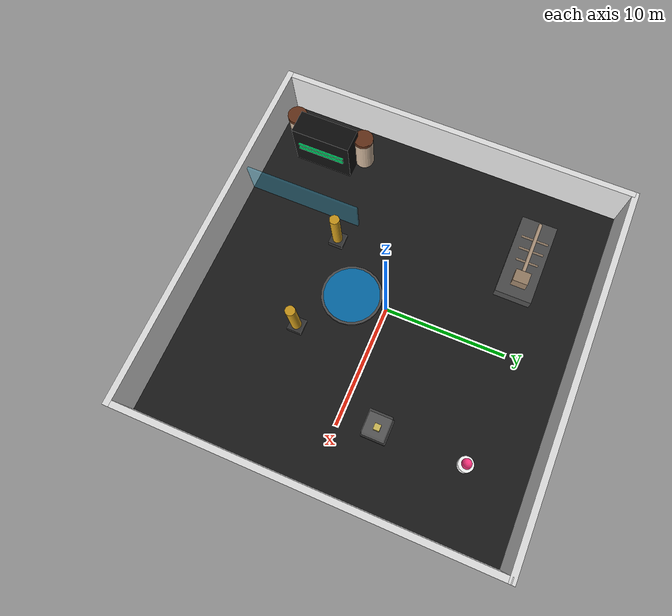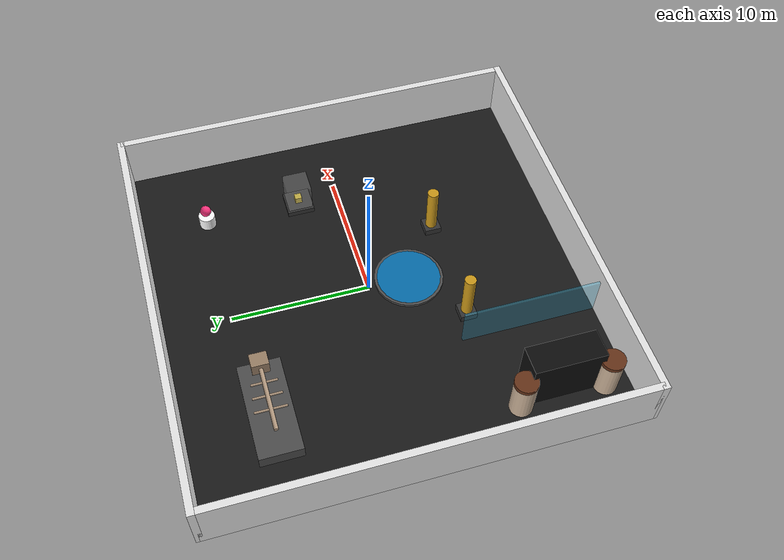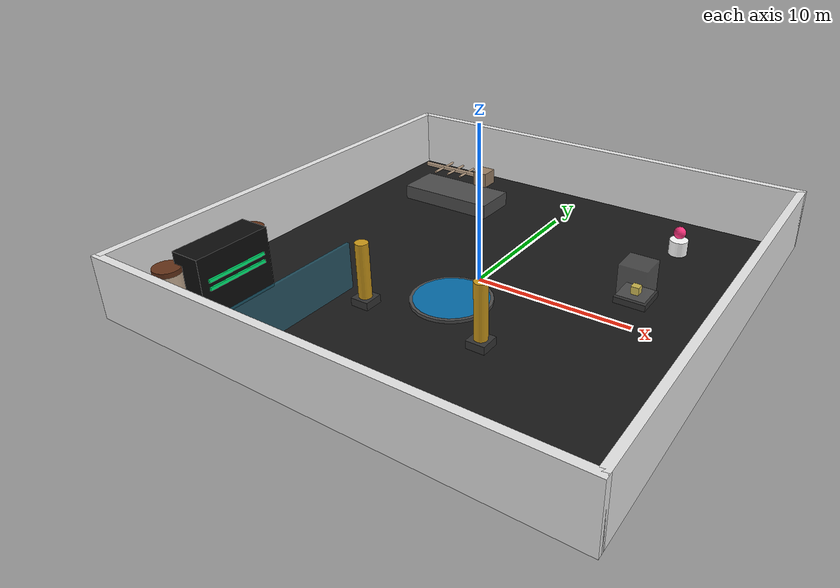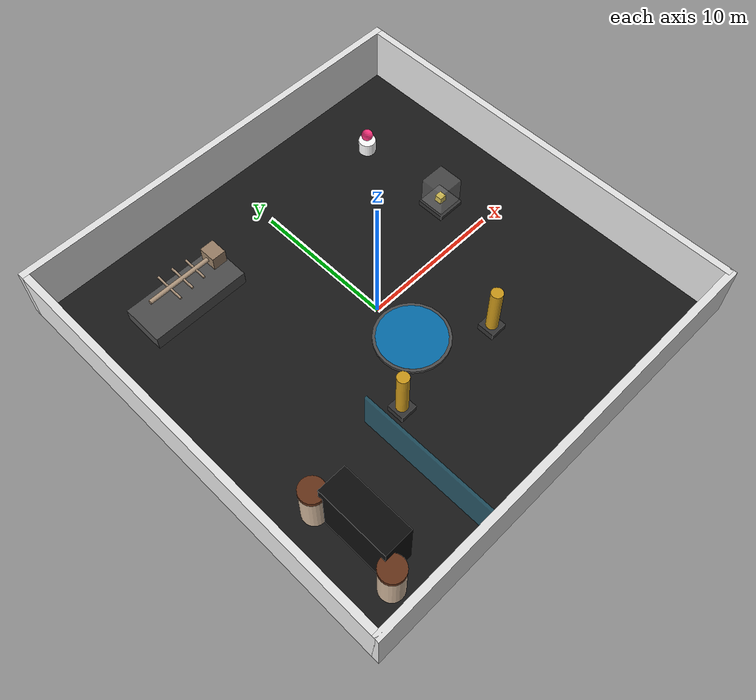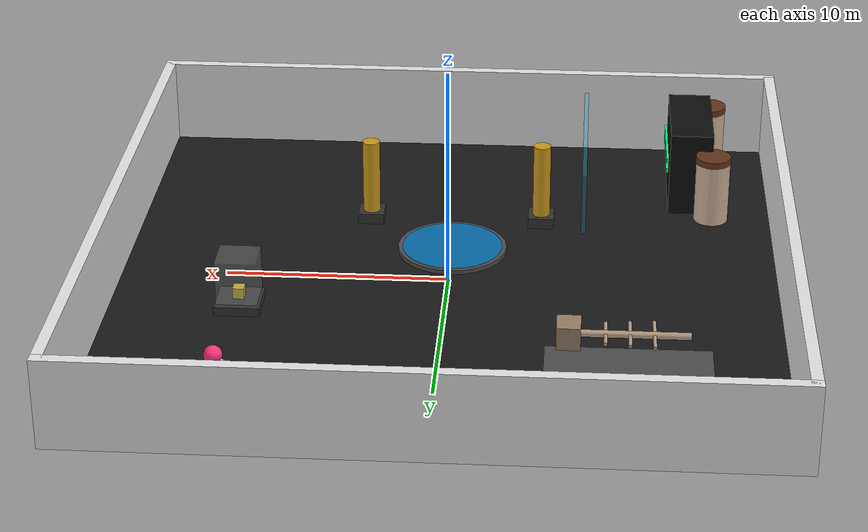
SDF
<?xml version="1.0" ?>
<sdf version="1.8">
  <world name="museum_world">
    <!-- Required Plugins -->
    <plugin filename="gz-sim-physics-system" name="gz::sim::systems::Physics"/>
    <plugin filename="gz-sim-user-commands-system" name="gz::sim::systems::UserCommands"/>
    <plugin filename="gz-sim-scene-broadcaster-system" name="gz::sim::systems::SceneBroadcaster"/>
    <plugin filename="gz-sim-sensors-system" name="gz::sim::systems::Sensors">
      <render_engine>ogre2</render_engine>
    </plugin>

    <!-- Throttled Physics for smooth video recording -->
    <physics name="1ms" type="ignored">
      <max_step_size>0.001</max_step_size>
      <real_time_factor>0.5</real_time_factor>
    </physics>

    <!-- Ambient World Lighting -->
    <light type="directional" name="sun">
      <cast_shadows>true</cast_shadows>
      <pose>0 0 10 0 0 0</pose>
      <diffuse>0.7 0.7 0.7 1</diffuse>
      <specular>0.5 0.5 0.5 1</specular>
      <direction>-0.5 0.2 -0.9</direction>
    </light>

    <model name="centennial_robotics_museum">
      <static>true</static>

      <!-- High-Gloss Obsidian Floor -->
      <link name="floor">
        <visual name="visual">
          <geometry><plane><normal>0 0 1</normal><size>30 30</size></plane></geometry>
          <material>
            <ambient>0.05 0.05 0.05 1</ambient>
            <diffuse>0.1 0.1 0.1 1</diffuse>
            <specular>0.8 0.8 0.8 1</specular>
          </material>
        </visual>
        <collision name="collision">
          <geometry><plane><normal>0 0 1</normal><size>30 30</size></plane></geometry>
        </collision>
      </link>

      <!-- Perimeter Walls (Sleek Matte White) -->
      <link name="north_wall"><pose>0 15 2 0 0 0</pose><visual name="v"><geometry><box><size>30.5 0.5 4</size></box></geometry><material><ambient>0.9 0.9 0.9 1</ambient></material></visual><collision name="c"><geometry><box><size>30.5 0.5 4</size></box></geometry></collision></link>
      <link name="south_wall"><pose>0 -15 2 0 0 0</pose><visual name="v"><geometry><box><size>30.5 0.5 4</size></box></geometry><material><ambient>0.9 0.9 0.9 1</ambient></material></visual><collision name="c"><geometry><box><size>30.5 0.5 4</size></box></geometry></collision></link>
      <link name="east_wall"><pose>15 0 2 0 0 0</pose><visual name="v"><geometry><box><size>0.5 30 4</size></box></geometry><material><ambient>0.9 0.9 0.9 1</ambient></material></visual><collision name="c"><geometry><box><size>0.5 30 4</size></box></geometry></collision></link>
      <link name="west_wall"><pose>-15 0 2 0 0 0</pose><visual name="v"><geometry><box><size>0.5 30 4</size></box></geometry><material><ambient>0.9 0.9 0.9 1</ambient></material></visual><collision name="c"><geometry><box><size>0.5 30 4</size></box></geometry></collision></link>

      <!-- GRAND LOBBY & FOUNTAIN                     -->
      <!-- Multi-tiered Gold Pillars -->
      <link name="pillar_1_base"><pose>-4 -6 0.25 0 0 0</pose><visual name="v"><geometry><box><size>1.2 1.2 0.5</size></box></geometry><material><ambient>0.2 0.2 0.2 1</ambient></material></visual><collision name="c"><geometry><box><size>1.2 1.2 0.5</size></box></geometry></collision></link>
      <link name="pillar_1"><pose>-4 -6 2 0 0 0</pose><visual name="v"><geometry><cylinder><radius>0.4</radius><length>4</length></cylinder></geometry><material><ambient>0.8 0.6 0.1 1</ambient><specular>1 1 1 1</specular></material></visual><collision name="c"><geometry><cylinder><radius>0.4</radius><length>4</length></cylinder></geometry></collision></link>

      <link name="pillar_2_base"><pose>4 -6 0.25 0 0 0</pose><visual name="v"><geometry><box><size>1.2 1.2 0.5</size></box></geometry><material><ambient>0.2 0.2 0.2 1</ambient></material></visual><collision name="c"><geometry><box><size>1.2 1.2 0.5</size></box></geometry></collision></link>
      <link name="pillar_2"><pose>4 -6 2 0 0 0</pose><visual name="v"><geometry><cylinder><radius>0.4</radius><length>4</length></cylinder></geometry><material><ambient>0.8 0.6 0.1 1</ambient><specular>1 1 1 1</specular></material></visual><collision name="c"><geometry><cylinder><radius>0.4</radius><length>4</length></cylinder></geometry></collision></link>

      <!-- Centerpiece Glowing Fountain Placeholder -->
      <link name="fountain_base"><pose>0 -3 0.1 0 0 0</pose><visual name="v"><geometry><cylinder><radius>2.5</radius><length>0.2</length></cylinder></geometry><material><ambient>0.3 0.3 0.3 1</ambient></material></visual><collision name="c"><geometry><cylinder><radius>2.5</radius><length>0.2</length></cylinder></geometry></collision></link>
      <link name="fountain_water"><pose>0 -3 0.15 0 0 0</pose><visual name="v"><geometry><cylinder><radius>2.3</radius><length>0.15</length></cylinder></geometry><material><ambient>0 0.5 0.8 0.8</ambient><emissive>0 0.3 0.6 1</emissive></material></visual></link>

      <!-- EXHIBIT 1: The AI Supercomputer Wing       -->
      <!-- Transparent Cyan Glass Enclosure -->
      <link name="ai_glass_wall"><pose>-6 -10 1.5 0 0 0</pose>
        <visual name="v">
          <geometry><box><size>0.2 10 3</size></box></geometry>
          <material><ambient>0.2 0.8 1 0.3</ambient><diffuse>0.2 0.8 1 0.3</diffuse><specular>1 1 1 1</specular></material>
          <transparency>0.6</transparency>
        </visual>
        <collision name="c"><geometry><box><size>0.2 10 3</size></box></geometry></collision>
      </link>

      <!-- Monolithic Mainframe -->
      <link name="mainframe"><pose>-11 -10 2 0 0 0</pose><visual name="v"><geometry><box><size>2 5 4</size></box></geometry><material><ambient>0.05 0.05 0.05 1</ambient></material></visual><collision name="c"><geometry><box><size>2 5 4</size></box></geometry></collision></link>
      <link name="mainframe_glow_1"><pose>-9.9 -10 2 0 0 0</pose><visual name="v"><geometry><box><size>0.1 4 0.2</size></box></geometry><material><ambient>0 1 0.5 1</ambient><emissive>0 1 0.5 1</emissive></material></visual></link>
      <link name="mainframe_glow_2"><pose>-9.9 -10 2.5 0 0 0</pose><visual name="v"><geometry><box><size>0.1 4 0.2</size></box></geometry><material><ambient>0 1 0.5 1</ambient><emissive>0 1 0.5 1</emissive></material></visual></link>

      <!-- Industrial Cooling Towers (Beige/Brown Theme) -->
      <link name="cooling_fan_1"><pose>-12 -7 1.5 0 0 0</pose><visual name="v"><geometry><cylinder><radius>0.8</radius><length>3</length></cylinder></geometry><material><ambient>0.8 0.7 0.6 1</ambient></material></visual><collision name="c"><geometry><cylinder><radius>0.8</radius><length>3</length></cylinder></geometry></collision></link>
      <link name="cooling_accent_1"><pose>-12 -7 3.1 0 0 0</pose><visual name="v"><geometry><cylinder><radius>0.82</radius><length>0.3</length></cylinder></geometry><material><ambient>0.4 0.2 0.1 1</ambient></material></visual></link>

      <link name="cooling_fan_2"><pose>-12 -13 1.5 0 0 0</pose><visual name="v"><geometry><cylinder><radius>0.8</radius><length>3</length></cylinder></geometry><material><ambient>0.8 0.7 0.6 1</ambient></material></visual><collision name="c"><geometry><cylinder><radius>0.8</radius><length>3</length></cylinder></geometry></collision></link>
      <link name="cooling_accent_2"><pose>-12 -13 3.1 0 0 0</pose><visual name="v"><geometry><cylinder><radius>0.82</radius><length>0.3</length></cylinder></geometry><material><ambient>0.4 0.2 0.1 1</ambient></material></visual></link>

      <!-- EXHIBIT 2: Renaissance Fine Art Gallery    -->
      <!-- Floating Glowing Orb Display -->
      <link name="art_pedestal_1"><pose>9 10 0.5 0 0 0</pose><visual name="v"><geometry><cylinder><radius>0.6</radius><length>1</length></cylinder></geometry><material><ambient>1 1 1 1</ambient><specular>0.8 0.8 0.8 1</specular></material></visual><collision name="c"><geometry><cylinder><radius>0.6</radius><length>1</length></cylinder></geometry></collision></link>
      <link name="glowing_orb"><pose>9 10 1.5 0 0 0</pose><visual name="v"><geometry><sphere><radius>0.4</radius></sphere></geometry><material><ambient>1 0.2 0.5 1</ambient><emissive>1 0.2 0.5 1</emissive></material></visual><collision name="c"><geometry><sphere><radius>0.4</radius></sphere></geometry></collision></link>

      <!-- Glass Display Case -->
      <link name="glass_case_base"><pose>9 3 0.2 0 0 0</pose><visual name="v"><geometry><box><size>2 2 0.4</size></box></geometry><material><ambient>0.2 0.2 0.2 1</ambient></material></visual><collision name="c"><geometry><box><size>2 2 0.4</size></box></geometry></collision></link>
      <link name="glass_case_top"><pose>9 3 1.5 0 0 0</pose>
        <visual name="v">
          <geometry><box><size>1.8 1.8 2</size></box></geometry>
          <material><ambient>1 1 1 0.2</ambient></material>
          <transparency>0.8</transparency>
        </visual>
        <collision name="c"><geometry><box><size>1.8 1.8 2</size></box></geometry></collision>
      </link>
      <link name="ancient_relic"><pose>9 3 0.7 0 0 0</pose><visual name="v"><geometry><box><size>0.5 0.5 0.5</size></box></geometry><material><ambient>0.8 0.7 0.2 1</ambient></material></visual></link>

      <!-- EXHIBIT 3: Prehistoric Dinosaur Bones      -->
      <!-- Abstract T-Rex Skeleton Frame (Earthy Tones) -->
      <link name="spine"><pose>-8 9 2.5 0 1.57 0</pose><visual name="v"><geometry><cylinder><radius>0.15</radius><length>5</length></cylinder></geometry><material><ambient>0.7 0.6 0.5 1</ambient></material></visual><collision name="c"><geometry><cylinder><radius>0.15</radius><length>5</length></cylinder></geometry></collision></link>
      <link name="rib_1"><pose>-8 9 2.5 1.57 0 0</pose><visual name="v"><geometry><cylinder><radius>0.08</radius><length>2</length></cylinder></geometry><material><ambient>0.7 0.6 0.5 1</ambient></material></visual></link>
      <link name="rib_2"><pose>-7 9 2.5 1.57 0 0</pose><visual name="v"><geometry><cylinder><radius>0.08</radius><length>1.8</length></cylinder></geometry><material><ambient>0.7 0.6 0.5 1</ambient></material></visual></link>
      <link name="rib_3"><pose>-9 9 2.5 1.57 0 0</pose><visual name="v"><geometry><cylinder><radius>0.08</radius><length>2.2</length></cylinder></geometry><material><ambient>0.7 0.6 0.5 1</ambient></material></visual></link>
      <link name="skull_block"><pose>-5.5 9 2.5 0 0 0</pose><visual name="v"><geometry><box><size>1 1.2 1</size></box></geometry><material><ambient>0.6 0.5 0.4 1</ambient></material></visual><collision name="c"><geometry><box><size>1 1.2 1</size></box></geometry></collision></link>

      <!-- Rock Pedestal -->
      <link name="rock_base"><pose>-8 9 0.5 0 0 0</pose><visual name="v"><geometry><box><size>7 3 1</size></box></geometry><material><ambient>0.3 0.3 0.3 1</ambient></material></visual><collision name="c"><geometry><box><size>7 3 1</size></box></geometry></collision></link>

    </model>
  </world>
</sdf>
